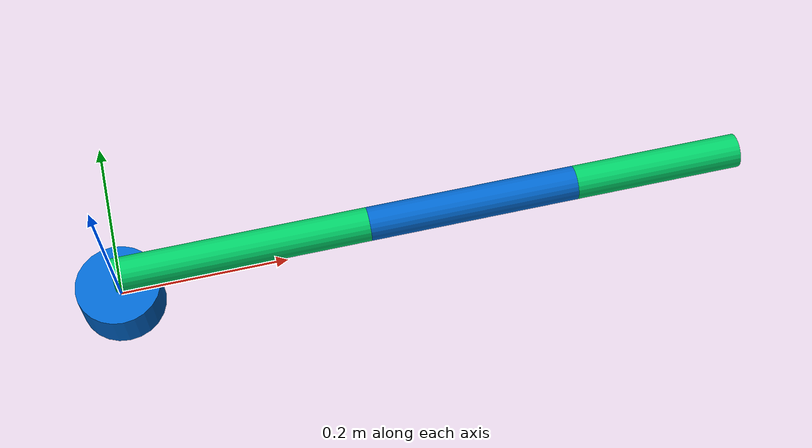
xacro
<?xml version="1.0"?>
<robot xmlns:xacro="http://ros.org/wiki/xacro" name="simple_arm">

  <!-- constants -->
  <xacro:property name="link_radius"   value="0.02"/>
  <xacro:property name="link_len1"     value="0.30"/>
  <xacro:property name="link_len2"     value="0.25"/>
  <xacro:property name="link_len3"     value="0.20"/>

  <!-- colours -->
  <material name="blue"><color rgba="0.0 0.4 0.8 1.0"/></material>
  <material name="green"><color rgba="0.0 0.8 0.4 1.0"/></material>

  <!-- base -->
  <link name="base_link">
    <visual>
      <geometry><cylinder length="0.05" radius="0.05"/></geometry>
      <material name="blue"/>
    </visual>
  </link>

  <!-- link 1 -->
  <link name="link1">
    <visual>
        <origin xyz="${link_len1/2} 0 0" rpy="0 ${pi/2} 0"/>
        <geometry>
        <cylinder length="${link_len1}" radius="${link_radius}"/>
        </geometry>
        <material name="green"/>
    </visual>
  </link>

  <joint name="joint1" type="revolute">
    <parent link="base_link"/>
    <child  link="link1"/>
    <origin xyz="0 0 0.05" rpy="0 0 0"/>
    <axis xyz="0 0 1"/>
    <limit lower="${-pi}" upper="${pi}" effort="5" velocity="1.0"/>
  </joint>

  <!-- link 2 -->
  <link name="link2">
    <visual>
        <origin xyz="${link_len2/2} 0 0" rpy="0 ${pi/2} 0"/>
        <geometry>
        <cylinder length="${link_len2}" radius="${link_radius}"/>
        </geometry>
        <material name="blue"/>
    </visual>
  </link>

  <joint name="joint2" type="revolute">
    <parent link="link1"/>
    <child  link="link2"/>
    <origin xyz="${link_len1} 0 0" rpy="0 0 0"/>
    <axis xyz="0 0 1"/>
    <limit lower="${-pi/2}" upper="${pi/2}" effort="5" velocity="1.0"/>
  </joint>

  <!-- link 3 -->
  <link name="link3">
    <visual>
        <origin xyz="${link_len3/2} 0 0" rpy="0 ${pi/2} 0"/>
        <geometry>
        <cylinder length="${link_len3}" radius="${link_radius}"/>
        </geometry>
        <material name="green"/>
    </visual>
  </link>

  <joint name="joint3" type="revolute">
    <parent link="link2"/>
    <child  link="link3"/>
    <origin xyz="${link_len2} 0 0" rpy="0 0 0"/>
    <axis xyz="0 0 1"/>
    <limit lower="${-pi/2}" upper="${pi/2}" effort="5" velocity="1.0"/>
  </joint>

</robot>
